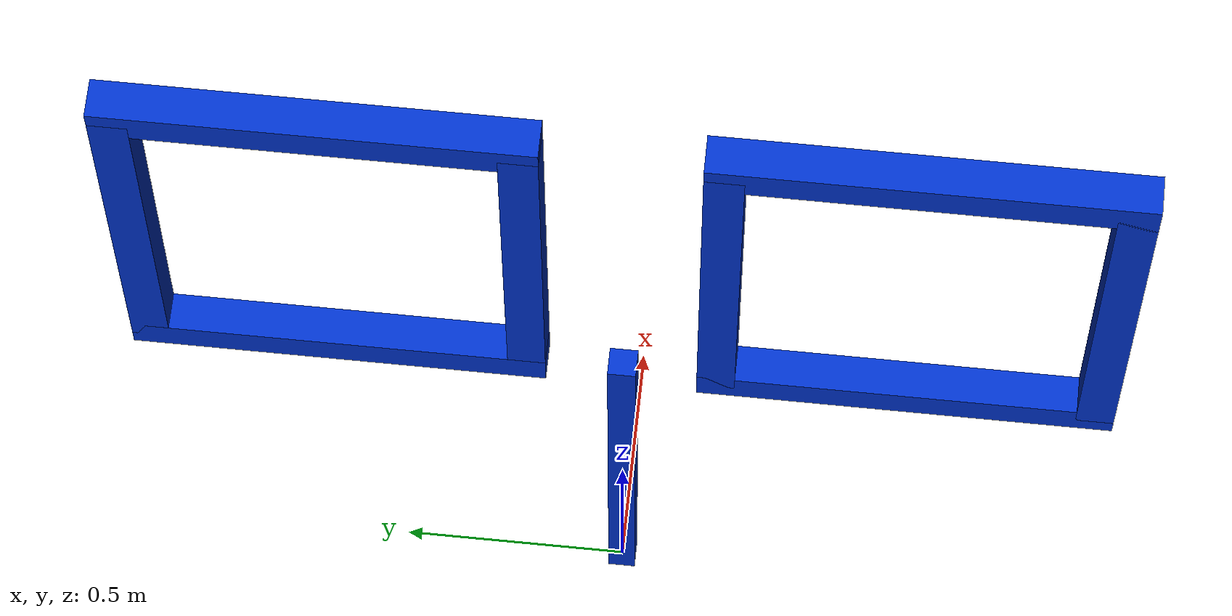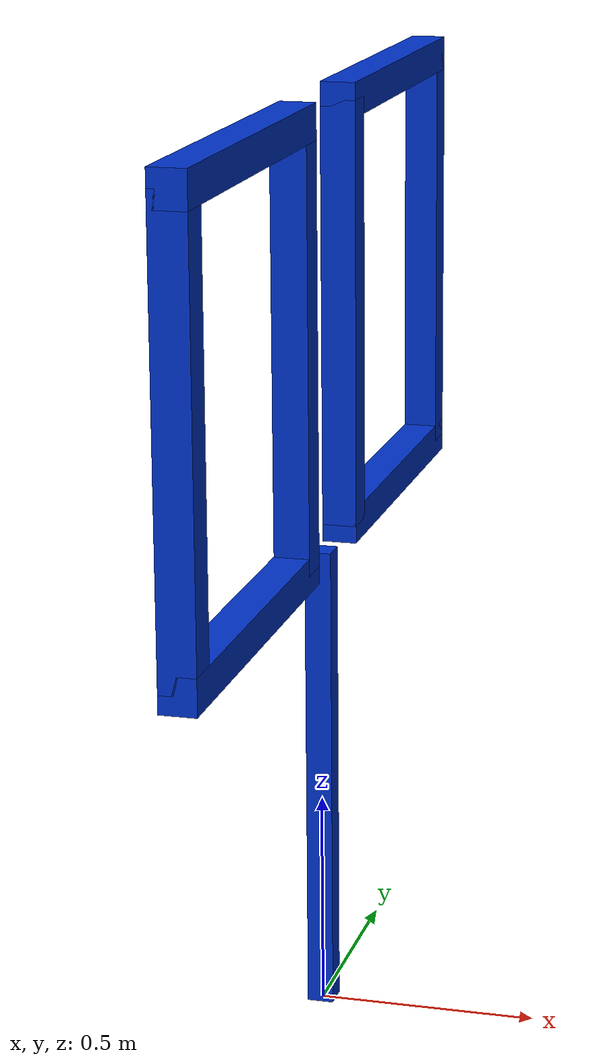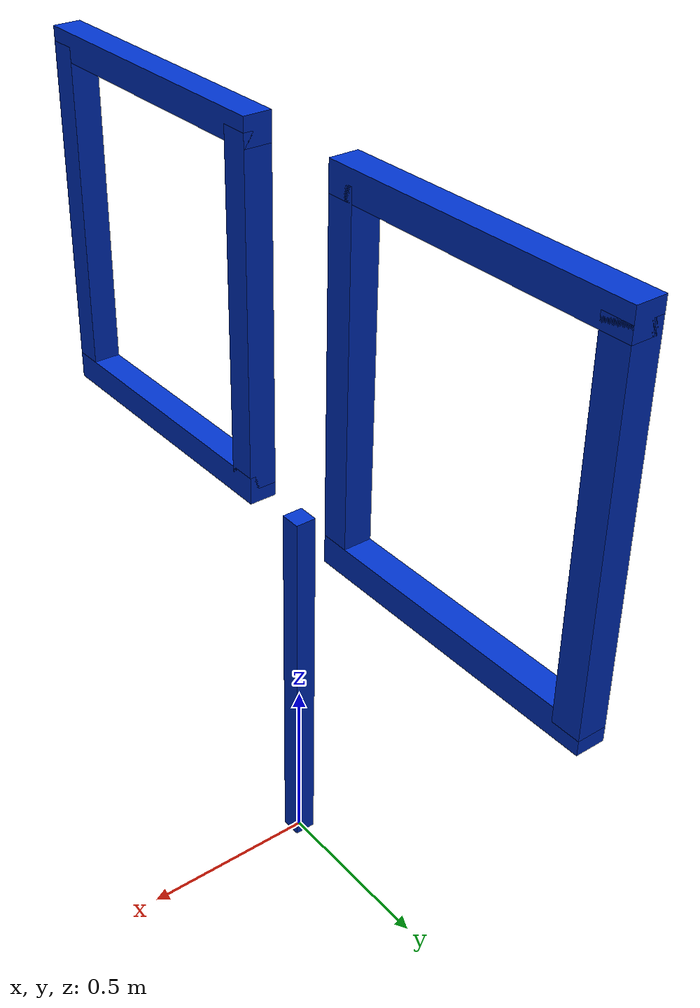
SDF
<?xml version="1.0" encoding="UTF-8"?>
<sdf version="1.9">
  <model name="robocup_obs3_double_gate">
    <static>true</static>

    <link name="left_gate_left_bar"><pose>0 -1.00 1.60 0 0 0</pose><visual name="visual"><geometry><box><size>0.08 0.08 0.98</size></box></geometry><material><diffuse>0.0 0.20 0.80 1</diffuse></material></visual></link>
    <link name="left_gate_right_bar"><pose>0 -0.20 1.60 0 0 0</pose><visual name="visual"><geometry><box><size>0.08 0.08 0.98</size></box></geometry><material><diffuse>0.0 0.20 0.80 1</diffuse></material></visual></link>
    <link name="left_gate_top_bar"><pose>0 -0.60 2.09 0 0 0</pose><visual name="visual"><geometry><box><size>0.08 0.88 0.08</size></box></geometry><material><diffuse>0.0 0.20 0.80 1</diffuse></material></visual></link>
    <link name="left_gate_bottom_bar"><pose>0 -0.60 1.11 0 0 0</pose><visual name="visual"><geometry><box><size>0.08 0.88 0.08</size></box></geometry><material><diffuse>0.0 0.20 0.80 1</diffuse></material></visual></link>

    <link name="right_gate_left_bar"><pose>0 0.20 1.60 0 0 0</pose><visual name="visual"><geometry><box><size>0.08 0.08 0.98</size></box></geometry><material><diffuse>0.0 0.20 0.80 1</diffuse></material></visual></link>
    <link name="right_gate_right_bar"><pose>0 1.00 1.60 0 0 0</pose><visual name="visual"><geometry><box><size>0.08 0.08 0.98</size></box></geometry><material><diffuse>0.0 0.20 0.80 1</diffuse></material></visual></link>
    <link name="right_gate_top_bar"><pose>0 0.60 2.09 0 0 0</pose><visual name="visual"><geometry><box><size>0.08 0.88 0.08</size></box></geometry><material><diffuse>0.0 0.20 0.80 1</diffuse></material></visual></link>
    <link name="right_gate_bottom_bar"><pose>0 0.60 1.11 0 0 0</pose><visual name="visual"><geometry><box><size>0.08 0.88 0.08</size></box></geometry><material><diffuse>0.0 0.20 0.80 1</diffuse></material></visual></link>

    <link name="center_support">
      <pose>0 0 0.55 0 0 0</pose>
      <visual name="visual">
        <geometry><box><size>0.06 0.06 1.10</size></box></geometry>
        <material><diffuse>0.0 0.20 0.80 1</diffuse></material>
      </visual>
    </link>
  </model>
</sdf>
